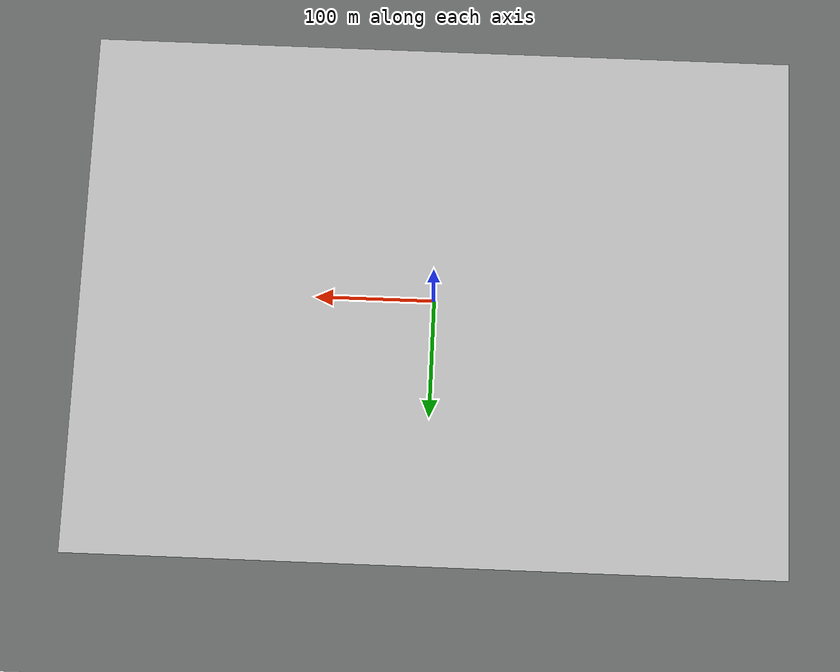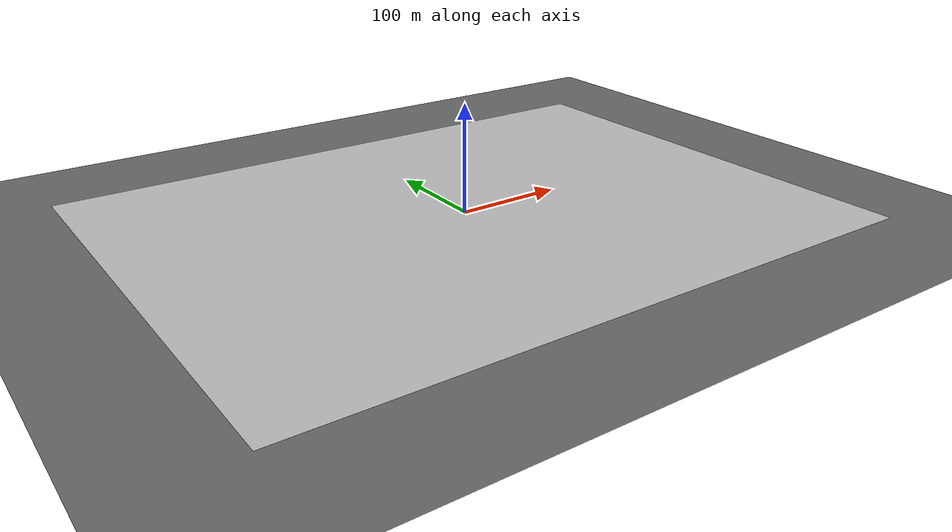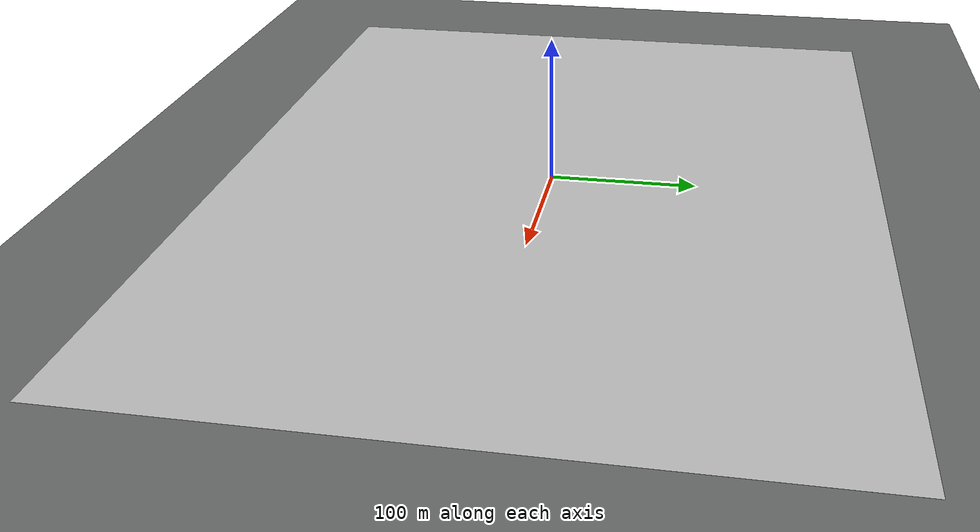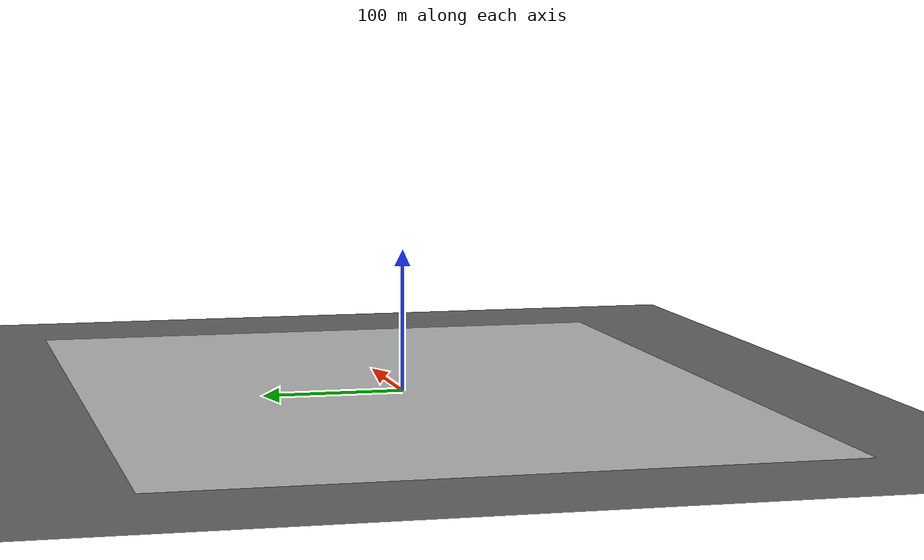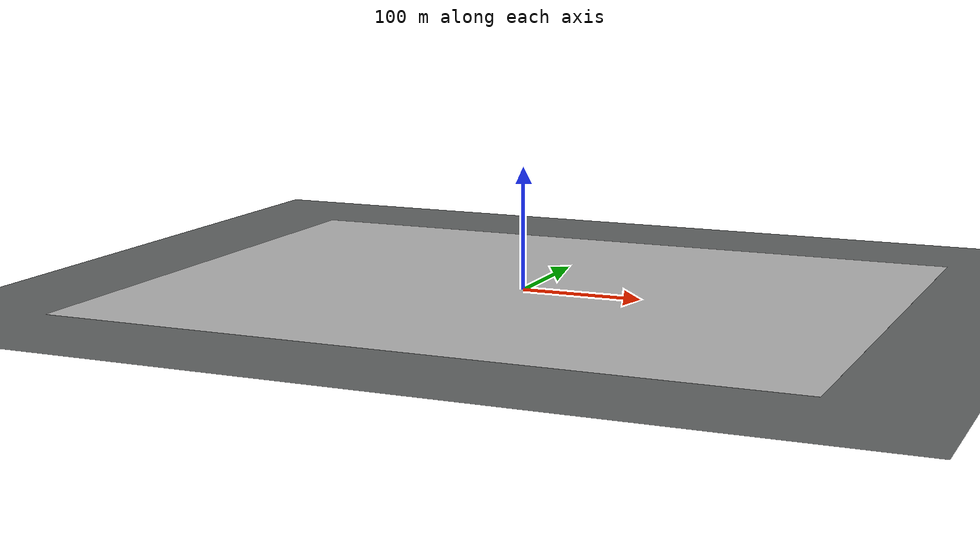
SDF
<?xml version="1.0" ?>
<sdf version="1.7">
  <model name="qau_ground_plane">
    <static>true</static>
    <link name="link">
      <collision name="collision">
        <geometry>
          <plane>
            <normal>0 0 1</normal>
            <size>1000 1000</size>
          </plane>
        </geometry>
      </collision>

      <visual name="base">
        <geometry>
          <plane>
            <normal>0 0 1</normal>
            <size>1000 1000</size>
          </plane>
        </geometry>
        <material>
          <ambient>0.388 0.400 0.398 1</ambient>
          <diffuse>0.388 0.400 0.398 1</diffuse>
        </material>
      </visual>

      <visual name="satellite_map">
        <pose>0 0 0.02 0 0 0</pose>
        <geometry>
          <box>
            <size>600 450.6 0.04</size>
          </box>
        </geometry>
        <material>
          <script>
            <uri>model://qau_ground_plane/materials/scripts</uri>
            <uri>model://qau_ground_plane/materials/textures</uri>
            <name>QAU/Satellite</name>
          </script>
        </material>
      </visual>
    </link>
  </model>
</sdf>
